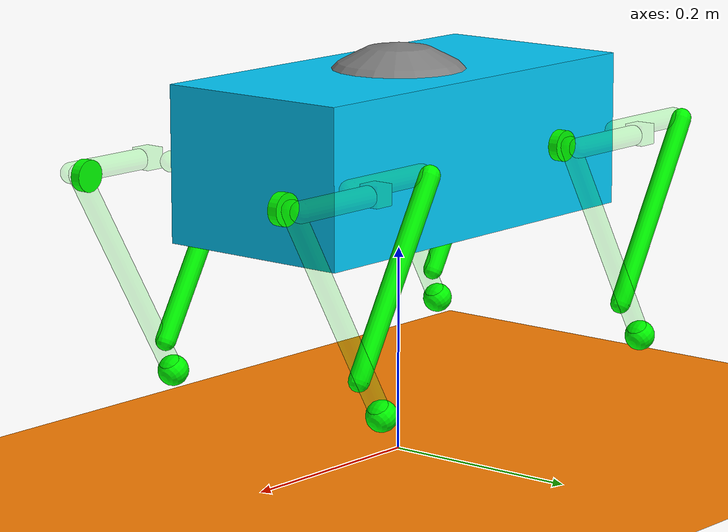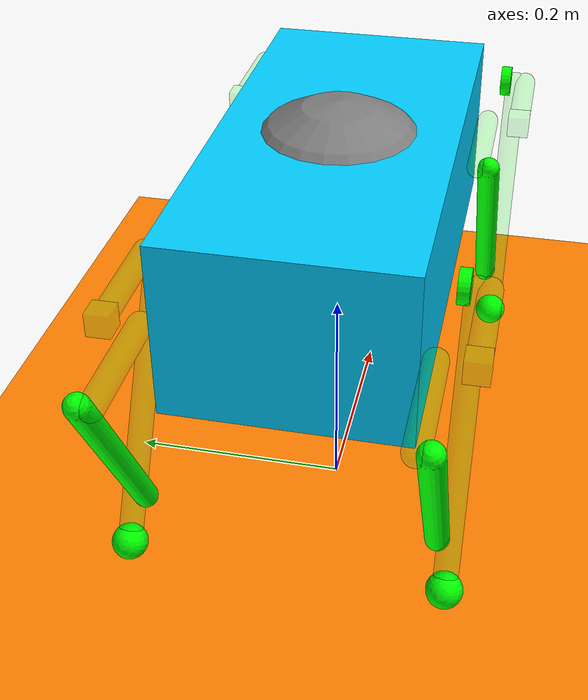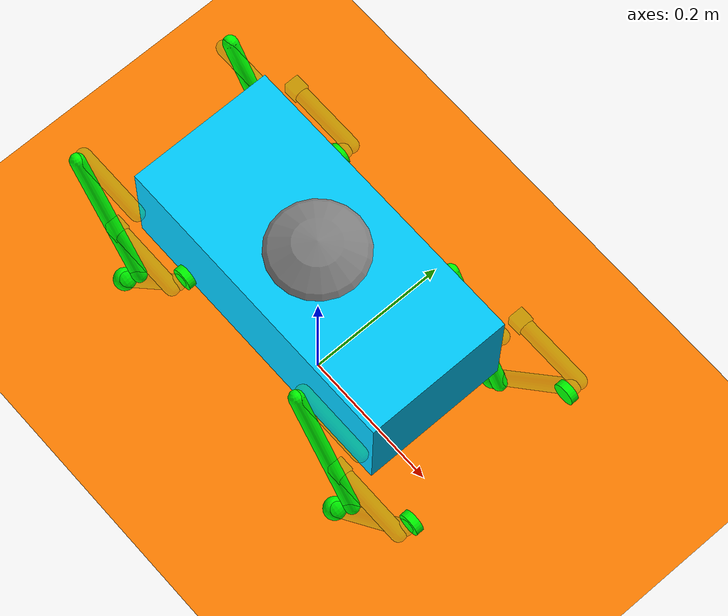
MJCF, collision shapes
<mujoco model=''>

    <compiler inertiafromgeom='false' angle='degree' eulerseq='zyx' meshdir='../../minitaur-stl'/>
    <size nuser_actuator='1' nuser_sensor='1'/>
    <option timestep='0.0005' iterations='50' solver='PGS' gravity='0 0 -9.806'/>
    <!-- Timestep is set to 0.0005 because our controller runs at 2 kHz (-9.806) -->
    <!-- Larger values still have stable dynamics -->

    <visual>
        <quality shadowsize='4096'/>
        <map znear='0.05'/>
    </visual>

    <default>
        <joint limited='true'/>
        <geom contype='0' conaffinity='0' condim='1' solref=".005 1" solimp=".8 .8 .01" material='collision'/>
        <equality solref='0.005 1'/>
        <motor ctrllimited='true'/>
        <mesh scale='0.001 0.001 0.001'/>
        <default class='mesh-import'>
            <geom type='mesh' euler='0 90 90' material='cassie'/>
        </default>
    </default>

    <asset>
        <texture type='skybox' builtin='gradient' width='128' height='128' rgb1='0.725490196078431   0.403921568627451   1.000000000000000' rgb2='1.000000000000000   0.984313725490196   0.588235294117647'/>
        <texture name='plane' type='2d' builtin='checker'  rgb1='1 0 0' rgb2='1 1 0' width='128' height='128'/>
        <material name='plane' reflectance='0.0' texture='plane' texrepeat='4 4' texuniform='true'/>
        <material name='cassie' rgba='0.003921568627451   0.803921568627451   0.996078431372549 1'/>
        <material name='collision' rgba='0 1 0 0.1'/>
        <mesh name='thigh' file='thigh.STL'/>
        <mesh name='foot' file='foot.STL'/>
        <mesh name='calf1' file='calf.STL'/>
        <mesh name='calf2' file='ankle.STL'/>
    </asset>

    <worldbody>
        <geom type='plane' size='100 100 100' material='plane' condim='3' contype='1' conaffinity='1'/>

        <body name='minitaur' pos='0 0 0.3'>
            <site name="bodyref" size="0.1"/>
            <camera mode="fixed" pos="1.3 -0.7 0.25" xyaxes = ".4 1 0 -.3 0 1"/>

            <inertial pos='0 0 0' mass='5.755' diaginertia='0.005 0.005 0.005'/>
            <geom type='box' size='0.21 0.1 0.075' material='cassie'/>

            <!--Forward/Backward motion -->
            <joint type='slide' limited='false' axis='1 0 0'/>

            <!-- Up/Down motion -->
            <joint type='slide' limited='false' axis='0 0 1' ref='0.3'/>

            <!-- Left/Right motion -->
            <joint type='slide' limited='false' axis='0 1 0'/>

            <!-- Pitch only -->
            <joint type='hinge' limited='false' axis='0 1 0'/>

            <!-- Roll only -->

            <!-- Rotation -->

            <!-- front left -->
            <body pos='0.2 0.14 0'>
                <inertial pos='0 0 0' mass='0.0001' diaginertia='0.0000000001 0.0000000001 0.0000000001'/>
                <geom type='box' size='0.01 0.01 0.01'/>

                <!-- thigh 1 -->
                <body euler='0 0 0' pos='0 0 0'>
                        <inertial pos='0.03848 0 0.00397' mass='0.03921' fullinertia='0.00000539488 0.00005606744 0.00006107051 0 0.00000009813 0'/>
                        <geom type='capsule' fromto='0 0 0 0.1 0 0' size='0.01'/>
                        <geom class='mesh-import' mesh='thigh' euler='180 90 90' pos='0.1 -0.005 0'/>
                        <joint name='thigh1FL_j' type='hinge' pos='0 0 0' axis='0 1 0' range='-180 180' ref='-90' armature='0.0001'/>

                    <body name='calfFL_long' pos='0.1 -0.01 0' euler='0 120 0'>
                        <inertial pos='0.11635 0 0.00463' mass='0.05488' fullinertia='0.00000220501 0.00027791876 0.00027939897 0 0 0'/>
                        <geom type='capsule' fromto='0 0 0 0.24 0 0' size='0.01'/>
                        <geom type='cylinder' pos='0 -0.01 0' euler='0 0 90' size='0.015 0.005' condim='3' contype='2' conaffinity='2'/>
                        <geom class='mesh-import' mesh='calf2' euler='180 90 90' pos='0 -0.005 0'/>
                        <joint type='hinge' pos='0 0 0' axis='0 1 0' limited='false'/>

                        <body pos='0.24 0 0'>
                            <inertial pos='0 0 0' mass='0'/>
                            <geom type='sphere' size='0.015' contype='1' conaffinity='1'/>
                            <geom class='mesh-import' mesh='foot' euler='90 0 0' pos='0.005 0 0'/>
                        </body>

                    </body>

                </body>

                <!-- thigh 1 -->
                <body euler='0 180 0' pos='0 -0.03 0'>
                    <inertial pos='0.03848 0 0.00397' mass='0.03921' fullinertia='0.00000539488 0.00005606744 0.00006107051 0 0.00000009813 0'/>
                    <geom type='capsule' fromto='0 0 0 0.1 0 0' size='0.01'/>
                    <geom class='mesh-import' mesh='thigh' euler='180 90 90' pos='0.1 -0.005 0'/>
                    <joint name='thigh2FL_j' type='hinge' pos='0 0 0' axis='0 1 0' range='-180 180' ref='90' armature='0.0001'/>

                    <body name='calfFL_short' euler='0 -120 0' pos='0.1 0.01 0'>
                        <inertial pos='0.10296 0 0.00448' mass='0.04710' fullinertia='0.00000203538 0.00019397672 0.00019542559 0 -0.00000006948 0'/>
                        <geom type='capsule' fromto='0 0 0 0.2 0 0' size='0.01' contype='2' conaffinity='2'/>
                        <joint type='hinge' pos='0 0 0' axis='0 1 0' limited='false'/>
                        <geom class='mesh-import' mesh='calf1' pos='0 0.005 0'/>
                    </body>

                </body>
            </body>

            <!-- front right -->
            <body pos='0.2 -0.14 0'>
                <inertial pos='0 0 0' mass='0.0001' diaginertia='0.0000000001 0.0000000001 0.0000000001'/>
                <geom type='box' size='0.01 0.01 0.01'/>

                <!-- thigh 1 -->
                <body euler='0 0 0' pos='0 0 0'>
                        <inertial pos='0.03848 0 0.00397' mass='0.03921' fullinertia='0.00000539488 0.00005606744 0.00006107051 0 0.00000009813 0'/>
                        <geom type='capsule' fromto='0 0 0 0.1 0 0' size='0.01'/>
                        <geom class='mesh-import' mesh='thigh' euler='180 90 90' pos='0.1 -0.005 0'/>
                        <joint name='thigh1FR_j' type='hinge' pos='0 0 0' axis='0 1 0' range='-180 180' ref='-90' armature='0.0001'/>

                    <body name='calfFR_long' pos='0.1 0.01 0' euler='0 120 0'>
                        <inertial pos='0.11635 0 0.00463' mass='0.05488' fullinertia='0.00000220501 0.00027791876 0.00027939897 0 0 0'/>
                        <geom type='capsule' fromto='0 0 0 0.24 0 0' size='0.01'/>
                        <geom type='cylinder' pos='0 0.01 0' euler='0 0 90' size='0.015 0.005' condim='3' contype='2' conaffinity='2'/>
                        <geom class='mesh-import' mesh='calf2' euler='180 90 90' pos='0 -0.005 0'/>
                        <joint type='hinge' pos='0 0 0' axis='0 1 0' limited='false'/>

                        <body pos='0.24 0 0'>
                            <inertial pos='0 0 0' mass='0'/>
                            <geom type='sphere' size='0.015' contype='1' conaffinity='1'/>
                            <geom class='mesh-import' mesh='foot' euler='90 0 0' pos='0.005 0 0'/>
                        </body>

                    </body>

                </body>

                <!-- thigh 1 -->
                <body euler='0 180 0' pos='0 0.03 0'>
                    <inertial pos='0.03848 0 0.00397' mass='0.03921' fullinertia='0.00000539488 0.00005606744 0.00006107051 0 0.00000009813 0'/>
                    <geom type='capsule' fromto='0 0 0 0.1 0 0' size='0.01'/>
                    <geom class='mesh-import' mesh='thigh' euler='180 90 90' pos='0.1 -0.005 0'/>
                    <joint name='thigh2FR_j' type='hinge' pos='0 0 0' axis='0 1 0' range='-180 180' ref='90' armature='0.0001'/>

                    <body name='calfFR_short' euler='0 -120 0' pos='0.1 -0.01 0'>
                        <inertial pos='0.10296 0 0.00448' mass='0.04710' fullinertia='0.00000203538 0.00019397672 0.00019542559 0 -0.00000006948 0'/>
                        <geom type='capsule' fromto='0 0 0 0.2 0 0' size='0.01' contype='2' conaffinity='2'/>
                        <joint type='hinge' pos='0 0 0' axis='0 1 0' limited='false'/>
                        <geom class='mesh-import' mesh='calf1' pos='0 0.005 0'/>
                    </body>

                </body>
            </body>

            <!-- back left -->
            <body pos='-0.2 0.14 0'>
                <inertial pos='0 0 0' mass='0.0001' diaginertia='0.0000000001 0.0000000001 0.0000000001'/>
                <geom type='box' size='0.01 0.01 0.01'/>

                <!-- thigh 1 -->
                <body euler='0 0 0' pos='0 0 0'>
                        <inertial pos='0.03848 0 0.00397' mass='0.03921' fullinertia='0.00000539488 0.00005606744 0.00006107051 0 0.00000009813 0'/>
                        <geom type='capsule' fromto='0 0 0 0.1 0 0' size='0.01'/>
                        <geom class='mesh-import' mesh='thigh' euler='180 90 90' pos='0.1 -0.005 0'/>
                        <joint name='thigh1BL_j' type='hinge' pos='0 0 0' axis='0 1 0' range='-180 180' ref='-90' armature='0.0001'/>

                    <body name='calfBL_long' pos='0.1 -0.01 0' euler='0 120 0'>
                        <inertial pos='0.11635 0 0.00463' mass='0.05488' fullinertia='0.00000220501 0.00027791876 0.00027939897 0 0 0'/>
                        <geom type='capsule' fromto='0 0 0 0.24 0 0' size='0.01'/>
                        <geom type='cylinder' pos='0 -0.01 0' euler='0 0 90' size='0.015 0.005' condim='3' contype='2' conaffinity='2'/>
                        <geom class='mesh-import' mesh='calf2' euler='180 90 90' pos='0 -0.005 0'/>
                        <joint type='hinge' pos='0 0 0' axis='0 1 0' limited='false'/>

                        <body pos='0.24 0 0'>
                            <inertial pos='0 0 0' mass='0'/>
                            <geom type='sphere' size='0.015' contype='1' conaffinity='1'/>
                            <geom class='mesh-import' mesh='foot' euler='90 0 0' pos='0.005 0 0'/>
                        </body>

                    </body>

                </body>

                <!-- thigh 1 -->
                <body euler='0 180 0' pos='0 -0.03 0'>
                    <inertial pos='0.03848 0 0.00397' mass='0.03921' fullinertia='0.00000539488 0.00005606744 0.00006107051 0 0.00000009813 0'/>
                    <geom type='capsule' fromto='0 0 0 0.1 0 0' size='0.01'/>
                    <geom class='mesh-import' mesh='thigh' euler='180 90 90' pos='0.1 -0.005 0'/>
                    <joint name='thigh2BL_j' type='hinge' pos='0 0 0' axis='0 1 0' range='-180 180' ref='90' armature='0.0001'/>

                    <body name='calfBL_short' euler='0 -120 0' pos='0.1 0.01 0'>
                        <inertial pos='0.10296 0 0.00448' mass='0.04710' fullinertia='0.00000203538 0.00019397672 0.00019542559 0 -0.00000006948 0'/>
                        <geom type='capsule' fromto='0 0 0 0.2 0 0' size='0.01' contype='2' conaffinity='2'/>
                        <joint type='hinge' pos='0 0 0' axis='0 1 0' limited='false'/>
                        <geom class='mesh-import' mesh='calf1' pos='0 0.005 0'/>
                    </body>

                </body>
            </body>

            <!-- back right -->
            <body pos='-0.2 -0.14 0'>
                <inertial pos='0 0 0' mass='0.0001' diaginertia='0.0000000001 0.0000000001 0.0000000001'/>
                <geom type='box' size='0.01 0.01 0.01'/>

                <!-- thigh 1 -->
                <body euler='0 0 0' pos='0 0 0'>
                        <inertial pos='0.03848 0 0.00397' mass='0.03921' fullinertia='0.00000539488 0.00005606744 0.00006107051 0 0.00000009813 0'/>
                        <geom type='capsule' fromto='0 0 0 0.1 0 0' size='0.01'/>
                        <geom class='mesh-import' mesh='thigh' euler='180 90 90' pos='0.1 -0.005 0'/>
                        <joint name='thigh1BR_j' type='hinge' pos='0 0 0' axis='0 1 0' range='-180 180' ref='-90' armature='0.0001'/>

                    <body name='calfBR_long' pos='0.1 0.01 0' euler='0 120 0'>
                        <inertial pos='0.11635 0 0.00463' mass='0.05488' fullinertia='0.00000220501 0.00027791876 0.00027939897 0 0 0'/>
                        <geom type='capsule' fromto='0 0 0 0.24 0 0' size='0.01'/>
                        <geom type='cylinder' pos='0 0.01 0' euler='0 0 90' size='0.015 0.005' condim='3' contype='2' conaffinity='2'/>
                        <geom class='mesh-import' mesh='calf2' euler='180 90 90' pos='0 -0.005 0'/>
                        <joint type='hinge' pos='0 0 0' axis='0 1 0' limited='false'/>

                        <body pos='0.24 0 0'>
                            <inertial pos='0 0 0' mass='0'/>
                            <geom type='sphere' size='0.015' contype='1' conaffinity='1'/>
                            <geom class='mesh-import' mesh='foot' euler='90 0 0' pos='0.005 0 0'/>
                        </body>

                    </body>

                </body>

                <!-- thigh 1 -->
                <body euler='0 180 0' pos='0 0.03 0'>
                    <inertial pos='0.03848 0 0.00397' mass='0.03921' fullinertia='0.00000539488 0.00005606744 0.00006107051 0 0.00000009813 0'/>
                    <geom type='capsule' fromto='0 0 0 0.1 0 0' size='0.01'/>
                    <geom class='mesh-import' mesh='thigh' euler='180 90 90' pos='0.1 -0.005 0'/>
                    <joint name='thigh2BR_j' type='hinge' pos='0 0 0' axis='0 1 0' range='-180 180' ref='90' armature='0.0001'/>

                    <body name='calfBR_short' euler='0 -120 0' pos='0.1 -0.01 0'>
                        <inertial pos='0.10296 0 0.00448' mass='0.04710' fullinertia='0.00000203538 0.00019397672 0.00019542559 0 -0.00000006948 0'/>
                        <geom type='capsule' fromto='0 0 0 0.2 0 0' size='0.01' contype='2' conaffinity='2'/>
                        <joint type='hinge' pos='0 0 0' axis='0 1 0' limited='false'/>
                        <geom class='mesh-import' mesh='calf1' pos='0 0.005 0'/>
                    </body>

                </body>
            </body>

        </body>

    </worldbody>

    <equality>
        <connect body1='calfFL_short' body2='calfFL_long' anchor='0.2 0 0' solref='0.005 1'/>
        <connect body1='calfFR_short' body2='calfFR_long' anchor='0.2 0 0' solref='0.005 1'/>
        <connect body1='calfBL_short' body2='calfBL_long' anchor='0.2 0 0' solref='0.005 1'/>
        <connect body1='calfBR_short' body2='calfBR_long' anchor='0.2 0 0' solref='0.005 1'/>
    </equality>

    <actuator>
        <motor name='thigh1FL_a' joint='thigh1FL_j' gear='1' ctrllimited='true' ctrlrange='-10 10'/>
        <motor name='thigh2FL_a' joint='thigh2FL_j' gear='1' ctrllimited='true' ctrlrange='-10 10'/>
        <motor name='thigh1FR_a' joint='thigh1FR_j' gear='1' ctrllimited='true' ctrlrange='-10 10'/>
        <motor name='thigh2FR_a' joint='thigh2FR_j' gear='1' ctrllimited='true' ctrlrange='-10 10'/>
        <motor name='thigh1BL_a' joint='thigh1BL_j' gear='1' ctrllimited='true' ctrlrange='-10 10'/>
        <motor name='thigh2BL_a' joint='thigh2BL_j' gear='1' ctrllimited='true' ctrlrange='-10 10'/>
        <motor name='thigh1BR_a' joint='thigh1BR_j' gear='1' ctrllimited='true' ctrlrange='-10 10'/>
        <motor name='thigh2BR_a' joint='thigh2BR_j' gear='1' ctrllimited='true' ctrlrange='-10 10'/>
    </actuator>

    <sensor>
        <gyro name="body_gyro" site="bodyref" />
        <accelerometer name="body_accel" site="bodyref" />
        <framepos name="body_pos" objtype="xbody" objname="minitaur" />

        <jointpos name='thigh1FL_spos' joint='thigh1FL_j'/>
        <jointpos name='thigh2FL_spos' joint='thigh2FL_j'/>
        <jointvel name='thigh1FL_svel' joint='thigh1FL_j'/>
        <jointvel name='thigh2FL_svel' joint='thigh2FL_j'/>
        <jointpos name='thigh1FR_spos' joint='thigh1FR_j'/>
        <jointpos name='thigh2FR_spos' joint='thigh2FR_j'/>
        <jointvel name='thigh1FR_svel' joint='thigh1FR_j'/>
        <jointvel name='thigh2FR_svel' joint='thigh2FR_j'/>
        <jointpos name='thigh1BL_spos' joint='thigh1BL_j'/>
        <jointpos name='thigh2BL_spos' joint='thigh2BL_j'/>
        <jointvel name='thigh1BL_svel' joint='thigh1BL_j'/>
        <jointvel name='thigh2BL_svel' joint='thigh2BL_j'/>
        <jointpos name='thigh1BR_spos' joint='thigh1BR_j'/>
        <jointpos name='thigh2BR_spos' joint='thigh2BR_j'/>
        <jointvel name='thigh1BR_svel' joint='thigh1BR_j'/>
        <jointvel name='thigh2BR_svel' joint='thigh2BR_j'/>
    </sensor>
</mujoco>
